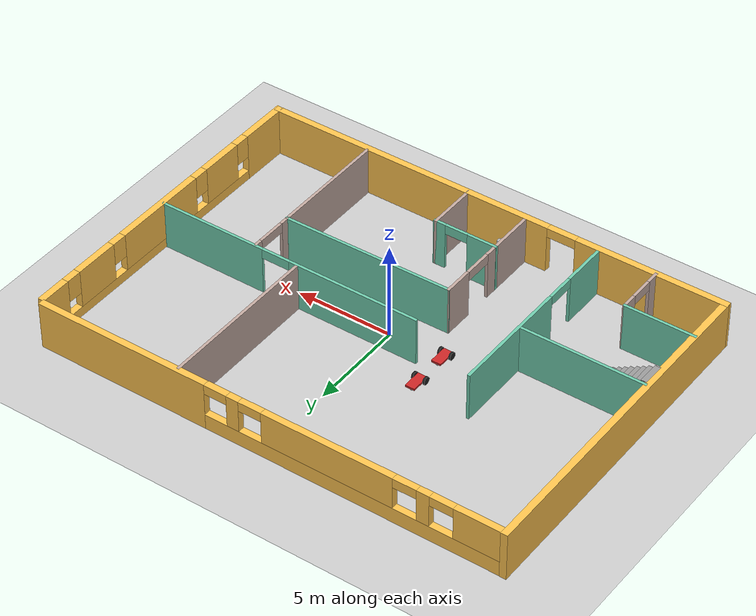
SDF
<sdf version="1.4">
 <world name="default">
  <include><uri>model://sun</uri></include>
  <include><uri>model://ground_plane</uri></include>
  <physics type="ode">
   <real_time_update_rate>1000.0</real_time_update_rate>
   <max_step_size>0.001</max_step_size>
   <real_time_factor>1</real_time_factor>
   <ode>
    <solver>
     <type>quick</type>
     <iters>150</iters>
     <precon_iters>0</precon_iters>
     <sor>1.400000</sor>
     <use_dynamic_moi_rescaling>1</use_dynamic_moi_rescaling>
    </solver>
    <constraints>
     <cfm>0.00001</cfm>
     <erp>0.2</erp>
     <contact_max_correcting_vel>2000.000000</contact_max_correcting_vel>
     <contact_surface_layer>0.01000</contact_surface_layer>
    </constraints>
   </ode>
  </physics>
  <scene><ambient>0.4 0.4 0.4 1</ambient><background>0.7 0.7 0.7 1</background><shadows>false</shadows></scene>
  <include><uri>model://Building</uri></include>
  <include>
   <name>toilet_1</name>
   <pose>-1.240160 -7.007346 0 1.570602 0 1.571</pose>
   <uri>model://Toilet</uri>
  </include>
  <include><name>myrobot_1</name><pose>-2.917230 0 0.2 0 0 0</pose><uri>model://myrobot</uri></include>
  <include><name>myrobot_2</name><pose>-2.917230 2 0.2 0 0 0</pose><uri>model://myrobot</uri></include>
  <plugin name="welcome_message" filename="libwelcome_message.so"/>
 </world>
</sdf>

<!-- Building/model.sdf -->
<sdf version='1.6'>
  <model name='Building'>
    <pose frame=''>-0.168381 0.74213 0 0 -0 0</pose>
    <link name='Stairs_0'>
      <visual name='Stairs_0_Visual_0'>
        <pose frame=''>-7.89562 -2.83855 0.083333 0 -0 -1.5708</pose>
        <geometry>
          <box>
            <size>1.1578 0.296455 0.166667</size>
          </box>
        </geometry>
        <material>
          <script>
            <uri>file://media/materials/scripts/gazebo.material</uri>
            <name>Gazebo/Grey</name>
          </script>
          <ambient>1 1 1 1</ambient>
        </material>
        <meta>
          <layer>0</layer>
        </meta>
      </visual>
      <collision name='Stairs_0_Collision_0'>
        <geometry>
          <box>
            <size>1.1578 0.296455 0.166667</size>
          </box>
        </geometry>
        <pose frame=''>-7.89562 -2.83855 0.083333 0 -0 -1.5708</pose>
      </collision>
      <visual name='Stairs_0_Visual_1'>
        <pose frame=''>-8.19208 -2.83855 0.25 0 -0 -1.5708</pose>
        <geometry>
          <box>
            <size>1.1578 0.296455 0.166667</size>
          </box>
        </geometry>
        <material>
          <script>
            <uri>file://media/materials/scripts/gazebo.material</uri>
            <name>Gazebo/Grey</name>
          </script>
          <ambient>1 1 1 1</ambient>
        </material>
        <meta>
          <layer>0</layer>
        </meta>
      </visual>
      <collision name='Stairs_0_Collision_1'>
        <geometry>
          <box>
            <size>1.1578 0.296455 0.166667</size>
          </box>
        </geometry>
        <pose frame=''>-8.19208 -2.83855 0.25 0 -0 -1.5708</pose>
      </collision>
      <visual name='Stairs_0_Visual_2'>
        <pose frame=''>-8.48853 -2.83855 0.416667 0 -0 -1.5708</pose>
        <geometry>
          <box>
            <size>1.1578 0.296455 0.166667</size>
          </box>
        </geometry>
        <material>
          <script>
            <uri>file://media/materials/scripts/gazebo.material</uri>
            <name>Gazebo/Grey</name>
          </script>
          <ambient>1 1 1 1</ambient>
        </material>
        <meta>
          <layer>0</layer>
        </meta>
      </visual>
      <collision name='Stairs_0_Collision_2'>
        <geometry>
          <box>
            <size>1.1578 0.296455 0.166667</size>
          </box>
        </geometry>
        <pose frame=''>-8.48853 -2.83855 0.416667 0 -0 -1.5708</pose>
      </collision>
      <visual name='Stairs_0_Visual_3'>
        <pose frame=''>-8.78499 -2.83855 0.583333 0 -0 -1.5708</pose>
        <geometry>
          <box>
            <size>1.1578 0.296455 0.166667</size>
          </box>
        </geometry>
        <material>
          <script>
            <uri>file://media/materials/scripts/gazebo.material</uri>
            <name>Gazebo/Grey</name>
          </script>
          <ambient>1 1 1 1</ambient>
        </material>
        <meta>
          <layer>0</layer>
        </meta>
      </visual>
      <collision name='Stairs_0_Collision_3'>
        <geometry>
          <box>
            <size>1.1578 0.296455 0.166667</size>
          </box>
        </geometry>
        <pose frame=''>-8.78499 -2.83855 0.583333 0 -0 -1.5708</pose>
      </collision>
      <visual name='Stairs_0_Visual_4'>
        <pose frame=''>-9.08144 -2.83855 0.75 0 -0 -1.5708</pose>
        <geometry>
          <box>
            <size>1.1578 0.296455 0.166667</size>
          </box>
        </geometry>
        <material>
          <script>
            <uri>file://media/materials/scripts/gazebo.material</uri>
            <name>Gazebo/Grey</name>
          </script>
          <ambient>1 1 1 1</ambient>
        </material>
        <meta>
          <layer>0</layer>
        </meta>
      </visual>
      <collision name='Stairs_0_Collision_4'>
        <geometry>
          <box>
            <size>1.1578 0.296455 0.166667</size>
          </box>
        </geometry>
        <pose frame=''>-9.08144 -2.83855 0.75 0 -0 -1.5708</pose>
      </collision>
      <visual name='Stairs_0_Visual_5'>
        <pose frame=''>-9.3779 -2.83855 0.916667 0 -0 -1.5708</pose>
        <geometry>
          <box>
            <size>1.1578 0.296455 0.166667</size>
          </box>
        </geometry>
        <material>
          <script>
            <uri>file://media/materials/scripts/gazebo.material</uri>
            <name>Gazebo/Grey</name>
          </script>
          <ambient>1 1 1 1</ambient>
        </material>
        <meta>
          <layer>0</layer>
        </meta>
      </visual>
      <collision name='Stairs_0_Collision_5'>
        <geometry>
          <box>
            <size>1.1578 0.296455 0.166667</size>
          </box>
        </geometry>
        <pose frame=''>-9.3779 -2.83855 0.916667 0 -0 -1.5708</pose>
      </collision>
      <visual name='Stairs_0_Visual_6'>
        <pose frame=''>-9.67435 -2.83855 1.08333 0 -0 -1.5708</pose>
        <geometry>
          <box>
            <size>1.1578 0.296455 0.166667</size>
          </box>
        </geometry>
        <material>
          <script>
            <uri>file://media/materials/scripts/gazebo.material</uri>
            <name>Gazebo/Grey</name>
          </script>
          <ambient>1 1 1 1</ambient>
        </material>
        <meta>
          <layer>0</layer>
        </meta>
      </visual>
      <collision name='Stairs_0_Collision_6'>
        <geometry>
          <box>
            <size>1.1578 0.296455 0.166667</size>
          </box>
        </geometry>
        <pose frame=''>-9.67435 -2.83855 1.08333 0 -0 -1.5708</pose>
      </collision>
      <visual name='Stairs_0_Visual_7'>
        <pose frame=''>-9.97081 -2.83855 1.25 0 -0 -1.5708</pose>
        <geometry>
          <box>
            <size>1.1578 0.296455 0.166667</size>
          </box>
        </geometry>
        <material>
          <script>
            <uri>file://media/materials/scripts/gazebo.material</uri>
            <name>Gazebo/Grey</name>
          </script>
          <ambient>1 1 1 1</ambient>
        </material>
        <meta>
          <layer>0</layer>
        </meta>
      </visual>
      <collision name='Stairs_0_Collision_7'>
        <geometry>
          <box>
            <size>1.1578 0.296455 0.166667</size>
          </box>
        </geometry>
        <pose frame=''>-9.97081 -2.83855 1.25 0 -0 -1.5708</pose>
      </collision>
      <visual name='Stairs_0_Visual_8'>
        <pose frame=''>-10.2673 -2.83855 1.41667 0 -0 -1.5708</pose>
        <geometry>
          <box>
            <size>1.1578 0.296455 0.166667</size>
          </box>
        </geometry>
        <material>
          <script>
            <uri>file://media/materials/scripts/gazebo.material</uri>
            <name>Gazebo/Grey</name>
          </script>
          <ambient>1 1 1 1</ambient>
        </material>
        <meta>
          <layer>0</layer>
        </meta>
      </visual>
      <collision name='Stairs_0_Collision_8'>
        <geometry>
          <box>
            <size>1.1578 0.296455 0.166667</size>
          </box>
        </geometry>
        <pose frame=''>-10.2673 -2.83855 1.41667 0 -0 -1.5708</pose>
      </collision>
      <visual name='Stairs_0_Visual_9'>
        <pose frame=''>-10.5637 -2.83855 1.58333 0 -0 -1.5708</pose>
        <geometry>
          <box>
            <size>1.1578 0.296455 0.166667</size>
          </box>
        </geometry>
        <material>
          <script>
            <uri>file://media/materials/scripts/gazebo.material</uri>
            <name>Gazebo/Grey</name>
          </script>
          <ambient>1 1 1 1</ambient>
        </material>
        <meta>
          <layer>0</layer>
        </meta>
      </visual>
      <collision name='Stairs_0_Collision_9'>
        <geometry>
          <box>
            <size>1.1578 0.296455 0.166667</size>
          </box>
        </geometry>
        <pose frame=''>-10.5637 -2.83855 1.58333 0 -0 -1.5708</pose>
      </collision>
      <visual name='Stairs_0_Visual_10'>
        <pose frame=''>-10.8602 -2.83855 1.75 0 -0 -1.5708</pose>
        <geometry>
          <box>
            <size>1.1578 0.296455 0.166667</size>
          </box>
        </geometry>
        <material>
          <script>
            <uri>file://media/materials/scripts/gazebo.material</uri>
            <name>Gazebo/Grey</name>
          </script>
          <ambient>1 1 1 1</ambient>
        </material>
        <meta>
          <layer>0</layer>
        </meta>
      </visual>
      <collision name='Stairs_0_Collision_10'>
        <geometry>
          <box>
            <size>1.1578 0.296455 0.166667</size>
          </box>
        </geometry>
        <pose frame=''>-10.8602 -2.83855 1.75 0 -0 -1.5708</pose>
      </collision>
      <visual name='Stairs_0_Visual_11'>
        <pose frame=''>-11.1566 -2.83855 1.91667 0 -0 -1.5708</pose>
        <geometry>
          <box>
            <size>1.1578 0.296455 0.166667</size>
          </box>
        </geometry>
        <material>
          <script>
            <uri>file://media/materials/scripts/gazebo.material</uri>
            <name>Gazebo/Grey</name>
          </script>
          <ambient>1 1 1 1</ambient>
        </material>
        <meta>
          <layer>0</layer>
        </meta>
      </visual>
      <collision name='Stairs_0_Collision_11'>
        <geometry>
          <box>
            <size>1.1578 0.296455 0.166667</size>
          </box>
        </geometry>
        <pose frame=''>-11.1566 -2.83855 1.91667 0 -0 -1.5708</pose>
      </collision>
      <visual name='Stairs_0_Visual_12'>
        <pose frame=''>-11.4531 -2.83855 2.08333 0 -0 -1.5708</pose>
        <geometry>
          <box>
            <size>1.1578 0.296455 0.166667</size>
          </box>
        </geometry>
        <material>
          <script>
            <uri>file://media/materials/scripts/gazebo.material</uri>
            <name>Gazebo/Grey</name>
          </script>
          <ambient>1 1 1 1</ambient>
        </material>
        <meta>
          <layer>0</layer>
        </meta>
      </visual>
      <collision name='Stairs_0_Collision_12'>
        <geometry>
          <box>
            <size>1.1578 0.296455 0.166667</size>
          </box>
        </geometry>
        <pose frame=''>-11.4531 -2.83855 2.08333 0 -0 -1.5708</pose>
      </collision>
      <visual name='Stairs_0_Visual_13'>
        <pose frame=''>-11.7495 -2.83855 2.25 0 -0 -1.5708</pose>
        <geometry>
          <box>
            <size>1.1578 0.296455 0.166667</size>
          </box>
        </geometry>
        <material>
          <script>
            <uri>file://media/materials/scripts/gazebo.material</uri>
            <name>Gazebo/Grey</name>
          </script>
          <ambient>1 1 1 1</ambient>
        </material>
        <meta>
          <layer>0</layer>
        </meta>
      </visual>
      <collision name='Stairs_0_Collision_13'>
        <geometry>
          <box>
            <size>1.1578 0.296455 0.166667</size>
          </box>
        </geometry>
        <pose frame=''>-11.7495 -2.83855 2.25 0 -0 -1.5708</pose>
      </collision>
      <visual name='Stairs_0_Visual_14'>
        <pose frame=''>-12.046 -2.83855 2.41667 0 -0 -1.5708</pose>
        <geometry>
          <box>
            <size>1.1578 0.296455 0.166667</size>
          </box>
        </geometry>
        <material>
          <script>
            <uri>file://media/materials/scripts/gazebo.material</uri>
            <name>Gazebo/Grey</name>
          </script>
          <ambient>1 1 1 1</ambient>
        </material>
        <meta>
          <layer>0</layer>
        </meta>
      </visual>
      <collision name='Stairs_0_Collision_14'>
        <geometry>
          <box>
            <size>1.1578 0.296455 0.166667</size>
          </box>
        </geometry>
        <pose frame=''>-12.046 -2.83855 2.41667 0 -0 -1.5708</pose>
      </collision>
    </link>
    <link name='Wall_0'>
      <pose frame=''>-0.115061 8.675 0 0 -0 3.14159</pose>
      <visual name='Wall_0_Visual_0'>
        <pose frame=''>-7.77268 0 1.25 0 -0 0</pose>
        <geometry>
          <box>
            <size>9.20463 0.35 2.5</size>
          </box>
        </geometry>
        <material>
          <script>
            <uri>file://media/materials/scripts/gazebo.material</uri>
            <name>Gazebo/Grey</name>
          </script>
          <ambient>1 0.764706 0.305882 1</ambient>
        </material>
        <meta>
          <layer>0</layer>
        </meta>
      </visual>
      <collision name='Wall_0_Collision_0'>
        <geometry>
          <box>
            <size>9.20463 0.35 2.5</size>
          </box>
        </geometry>
        <pose frame=''>-7.77268 0 1.25 0 -0 0</pose>
      </collision>
      <visual name='Wall_0_Visual_1'>
        <pose frame=''>4.60232 0 0.4 0 -0 0</pose>
        <geometry>
          <box>
            <size>15.5454 0.35 0.8</size>
          </box>
        </geometry>
        <material>
          <script>
            <uri>file://media/materials/scripts/gazebo.material</uri>
            <name>Gazebo/Grey</name>
          </script>
          <ambient>1 0.764706 0.305882 1</ambient>
        </material>
        <meta>
          <layer>0</layer>
        </meta>
      </visual>
      <collision name='Wall_0_Collision_1'>
        <geometry>
          <box>
            <size>15.5454 0.35 0.8</size>
          </box>
        </geometry>
        <pose frame=''>4.60232 0 0.4 0 -0 0</pose>
      </collision>
      <visual name='Wall_0_Visual_2'>
        <pose frame=''>-1.64984 0 1.65 0 -0 0</pose>
        <geometry>
          <box>
            <size>0.641045 0.35 1.7</size>
          </box>
        </geometry>
        <material>
          <script>
            <uri>file://media/materials/scripts/gazebo.material</uri>
            <name>Gazebo/Grey</name>
          </script>
          <ambient>1 0.764706 0.305882 1</ambient>
        </material>
        <meta>
          <layer>0</layer>
        </meta>
      </visual>
      <collision name='Wall_0_Collision_2'>
        <geometry>
          <box>
            <size>0.641045 0.35 1.7</size>
          </box>
        </geometry>
        <pose frame=''>-1.64984 0 1.65 0 -0 0</pose>
      </collision>
      <visual name='Wall_0_Visual_3'>
        <pose frame=''>3.28154 0 1.65 0 -0 0</pose>
        <geometry>
          <box>
            <size>6.82172 0.35 1.7</size>
          </box>
        </geometry>
        <material>
          <script>
            <uri>file://media/materials/scripts/gazebo.material</uri>
            <name>Gazebo/Grey</name>
          </script>
          <ambient>1 0.764706 0.305882 1</ambient>
        </material>
        <meta>
          <layer>0</layer>
        </meta>
      </visual>
      <collision name='Wall_0_Collision_3'>
        <geometry>
          <box>
            <size>6.82172 0.35 1.7</size>
          </box>
        </geometry>
        <pose frame=''>3.28154 0 1.65 0 -0 0</pose>
      </collision>
      <visual name='Wall_0_Visual_4'>
        <pose frame=''>8.20913 0 1.65 0 -0 0</pose>
        <geometry>
          <box>
            <size>0.633451 0.35 1.7</size>
          </box>
        </geometry>
        <material>
          <script>
            <uri>file://media/materials/scripts/gazebo.material</uri>
            <name>Gazebo/Grey</name>
          </script>
          <ambient>1 0.764706 0.305882 1</ambient>
        </material>
        <meta>
          <layer>0</layer>
        </meta>
      </visual>
      <collision name='Wall_0_Collision_4'>
        <geometry>
          <box>
            <size>0.633451 0.35 1.7</size>
          </box>
        </geometry>
        <pose frame=''>8.20913 0 1.65 0 -0 0</pose>
      </collision>
      <visual name='Wall_0_Visual_5'>
        <pose frame=''>11.0504 0 1.65 0 -0 0</pose>
        <geometry>
          <box>
            <size>2.64915 0.35 1.7</size>
          </box>
        </geometry>
        <material>
          <script>
            <uri>file://media/materials/scripts/gazebo.material</uri>
            <name>Gazebo/Grey</name>
          </script>
          <ambient>1 0.764706 0.305882 1</ambient>
        </material>
        <meta>
          <layer>0</layer>
        </meta>
      </visual>
      <collision name='Wall_0_Collision_5'>
        <geometry>
          <box>
            <size>2.64915 0.35 1.7</size>
          </box>
        </geometry>
        <pose frame=''>11.0504 0 1.65 0 -0 0</pose>
      </collision>
      <visual name='Wall_0_Visual_6'>
        <pose frame=''>-2.57037 0 2.25 0 -0 0</pose>
        <geometry>
          <box>
            <size>1.2 0.35 0.5</size>
          </box>
        </geometry>
        <material>
          <script>
            <uri>file://media/materials/scripts/gazebo.material</uri>
            <name>Gazebo/Grey</name>
          </script>
          <ambient>1 0.764706 0.305882 1</ambient>
        </material>
        <meta>
          <layer>0</layer>
        </meta>
      </visual>
      <collision name='Wall_0_Collision_6'>
        <geometry>
          <box>
            <size>1.2 0.35 0.5</size>
          </box>
        </geometry>
        <pose frame=''>-2.57037 0 2.25 0 -0 0</pose>
      </collision>
      <visual name='Wall_0_Visual_7'>
        <pose frame=''>-0.729321 0 2.25 0 -0 0</pose>
        <geometry>
          <box>
            <size>1.2 0.35 0.5</size>
          </box>
        </geometry>
        <material>
          <script>
            <uri>file://media/materials/scripts/gazebo.material</uri>
            <name>Gazebo/Grey</name>
          </script>
          <ambient>1 0.764706 0.305882 1</ambient>
        </material>
        <meta>
          <layer>0</layer>
        </meta>
      </visual>
      <collision name='Wall_0_Collision_7'>
        <geometry>
          <box>
            <size>1.2 0.35 0.5</size>
          </box>
        </geometry>
        <pose frame=''>-0.729321 0 2.25 0 -0 0</pose>
      </collision>
      <visual name='Wall_0_Visual_8'>
        <pose frame=''>7.2924 0 2.25 0 -0 0</pose>
        <geometry>
          <box>
            <size>1.2 0.35 0.5</size>
          </box>
        </geometry>
        <material>
          <script>
            <uri>file://media/materials/scripts/gazebo.material</uri>
            <name>Gazebo/Grey</name>
          </script>
          <ambient>1 0.764706 0.305882 1</ambient>
        </material>
        <meta>
          <layer>0</layer>
        </meta>
      </visual>
      <collision name='Wall_0_Collision_8'>
        <geometry>
          <box>
            <size>1.2 0.35 0.5</size>
          </box>
        </geometry>
        <pose frame=''>7.2924 0 2.25 0 -0 0</pose>
      </collision>
      <visual name='Wall_0_Visual_9'>
        <pose frame=''>9.12585 0 2.25 0 -0 0</pose>
        <geometry>
          <box>
            <size>1.2 0.35 0.5</size>
          </box>
        </geometry>
        <material>
          <script>
            <uri>file://media/materials/scripts/gazebo.material</uri>
            <name>Gazebo/Grey</name>
          </script>
          <ambient>1 0.764706 0.305882 1</ambient>
        </material>
        <meta>
          <layer>0</layer>
        </meta>
      </visual>
      <collision name='Wall_0_Collision_9'>
        <geometry>
          <box>
            <size>1.2 0.35 0.5</size>
          </box>
        </geometry>
        <pose frame=''>9.12585 0 2.25 0 -0 0</pose>
      </collision>
    </link>
    <link name='Wall_1'>
      <collision name='Wall_1_Collision'>
        <geometry>
          <box>
            <size>17.7463 0.35 2.5</size>
          </box>
        </geometry>
        <pose frame=''>0 0 1.25 0 -0 0</pose>
      </collision>
      <visual name='Wall_1_Visual'>
        <pose frame=''>0 0 1.25 0 -0 0</pose>
        <geometry>
          <box>
            <size>17.7463 0.35 2.5</size>
          </box>
        </geometry>
        <material>
          <script>
            <uri>file://media/materials/scripts/gazebo.material</uri>
            <name>Gazebo/Grey</name>
          </script>
          <ambient>1 0.764706 0.305882 1</ambient>
        </material>
        <meta>
          <layer>0</layer>
        </meta>
      </visual>
      <pose frame=''>-12.3149 0 0 0 -0 -1.56812</pose>
    </link>
    <link name='Wall_10'>
      <collision name='Wall_10_Collision'>
        <geometry>
          <box>
            <size>8.99016 0.15 2.5</size>
          </box>
        </geometry>
        <pose frame=''>0 0 1.25 0 -0 0</pose>
      </collision>
      <visual name='Wall_10_Visual'>
        <pose frame=''>0 0 1.25 0 -0 0</pose>
        <geometry>
          <box>
            <size>8.99016 0.15 2.5</size>
          </box>
        </geometry>
        <material>
          <script>
            <uri>file://media/materials/scripts/gazebo.material</uri>
            <name>Gazebo/Grey</name>
          </script>
          <ambient>0.435294 0.796078 0.67451 1</ambient>
        </material>
        <meta>
          <layer>0</layer>
        </meta>
      </visual>
      <pose frame=''>2.57383 -2.37111 0 0 -0 0.012303</pose>
    </link>
    <link name='Wall_11'>
      <collision name='Wall_11_Collision'>
        <geometry>
          <box>
            <size>6.35877 0.15 2.5</size>
          </box>
        </geometry>
        <pose frame=''>0 0 1.25 0 -0 0</pose>
      </collision>
      <visual name='Wall_11_Visual'>
        <pose frame=''>0 0 1.25 0 -0 0</pose>
        <geometry>
          <box>
            <size>6.35877 0.15 2.5</size>
          </box>
        </geometry>
        <material>
          <script>
            <uri>file://media/materials/scripts/gazebo.material</uri>
            <name>Gazebo/Grey</name>
          </script>
          <ambient>0.760784 0.662745 0.627451 1</ambient>
        </material>
        <meta>
          <layer>0</layer>
        </meta>
      </visual>
      <pose frame=''>6.99883 -5.4211 0 0 -0 -1.5692</pose>
    </link>
    <link name='Wall_14'>
      <pose frame=''>5.19897 0.095021 0 0 -0 3.14159</pose>
      <visual name='Wall_14_Visual_0'>
        <pose frame=''>-4.22612 0 1.25 0 -0 0</pose>
        <geometry>
          <box>
            <size>5.74777 0.15 2.5</size>
          </box>
        </geometry>
        <material>
          <script>
            <uri>file://media/materials/scripts/gazebo.material</uri>
            <name>Gazebo/Grey</name>
          </script>
          <ambient>0.435294 0.796078 0.67451 1</ambient>
        </material>
        <meta>
          <layer>0</layer>
        </meta>
      </visual>
      <collision name='Wall_14_Collision_0'>
        <geometry>
          <box>
            <size>5.74777 0.15 2.5</size>
          </box>
        </geometry>
        <pose frame=''>-4.22612 0 1.25 0 -0 0</pose>
      </collision>
      <visual name='Wall_14_Visual_1'>
        <pose frame=''>3.62388 0 1.25 0 -0 0</pose>
        <geometry>
          <box>
            <size>6.95223 0.15 2.5</size>
          </box>
        </geometry>
        <material>
          <script>
            <uri>file://media/materials/scripts/gazebo.material</uri>
            <name>Gazebo/Grey</name>
          </script>
          <ambient>0.435294 0.796078 0.67451 1</ambient>
        </material>
        <meta>
          <layer>0</layer>
        </meta>
      </visual>
      <collision name='Wall_14_Collision_1'>
        <geometry>
          <box>
            <size>6.95223 0.15 2.5</size>
          </box>
        </geometry>
        <pose frame=''>3.62388 0 1.25 0 -0 0</pose>
      </collision>
      <visual name='Wall_14_Visual_2'>
        <pose frame=''>-0.602234 0 2.25 0 -0 0</pose>
        <geometry>
          <box>
            <size>1.5 0.15 0.5</size>
          </box>
        </geometry>
        <material>
          <script>
            <uri>file://media/materials/scripts/gazebo.material</uri>
            <name>Gazebo/Grey</name>
          </script>
          <ambient>0.435294 0.796078 0.67451 1</ambient>
        </material>
        <meta>
          <layer>0</layer>
        </meta>
      </visual>
      <collision name='Wall_14_Collision_2'>
        <geometry>
          <box>
            <size>1.5 0.15 0.5</size>
          </box>
        </geometry>
        <pose frame=''>-0.602234 0 2.25 0 -0 0</pose>
      </collision>
    </link>
    <link name='Wall_16'>
      <pose frame=''>6.99388 -1.15161 0 0 -0 1.5708</pose>
      <visual name='Wall_16_Visual_0'>
        <pose frame=''>-0.964185 0 1.25 0 -0 0</pose>
        <geometry>
          <box>
            <size>0.571629 0.15 2.5</size>
          </box>
        </geometry>
        <material>
          <script>
            <uri>file://media/materials/scripts/gazebo.material</uri>
            <name>Gazebo/Grey</name>
          </script>
          <ambient>0.760784 0.662745 0.627451 1</ambient>
        </material>
        <meta>
          <layer>0</layer>
        </meta>
      </visual>
      <collision name='Wall_16_Collision_0'>
        <geometry>
          <box>
            <size>0.571629 0.15 2.5</size>
          </box>
        </geometry>
        <pose frame=''>-0.964185 0 1.25 0 -0 0</pose>
      </collision>
      <visual name='Wall_16_Visual_1'>
        <pose frame=''>1.03581 0 1.25 0 -0 0</pose>
        <geometry>
          <box>
            <size>0.428371 0.15 2.5</size>
          </box>
        </geometry>
        <material>
          <script>
            <uri>file://media/materials/scripts/gazebo.material</uri>
            <name>Gazebo/Grey</name>
          </script>
          <ambient>0.760784 0.662745 0.627451 1</ambient>
        </material>
        <meta>
          <layer>0</layer>
        </meta>
      </visual>
      <collision name='Wall_16_Collision_1'>
        <geometry>
          <box>
            <size>0.428371 0.15 2.5</size>
          </box>
        </geometry>
        <pose frame=''>1.03581 0 1.25 0 -0 0</pose>
      </collision>
      <visual name='Wall_16_Visual_2'>
        <pose frame=''>0.071629 0 2.25 0 -0 0</pose>
        <geometry>
          <box>
            <size>1.5 0.15 0.5</size>
          </box>
        </geometry>
        <material>
          <script>
            <uri>file://media/materials/scripts/gazebo.material</uri>
            <name>Gazebo/Grey</name>
          </script>
          <ambient>0.760784 0.662745 0.627451 1</ambient>
        </material>
        <meta>
          <layer>0</layer>
        </meta>
      </visual>
      <collision name='Wall_16_Collision_2'>
        <geometry>
          <box>
            <size>1.5 0.15 0.5</size>
          </box>
        </geometry>
        <pose frame=''>0.071629 0 2.25 0 -0 0</pose>
      </collision>
    </link>
    <link name='Wall_18'>
      <collision name='Wall_18_Collision'>
        <geometry>
          <box>
            <size>8.5 0.15 2.5</size>
          </box>
        </geometry>
        <pose frame=''>0 0 1.25 0 -0 0</pose>
      </collision>
      <visual name='Wall_18_Visual'>
        <pose frame=''>0 0 1.25 0 -0 0</pose>
        <geometry>
          <box>
            <size>8.5 0.15 2.5</size>
          </box>
        </geometry>
        <material>
          <script>
            <uri>file://media/materials/scripts/gazebo.material</uri>
            <name>Gazebo/Grey</name>
          </script>
          <ambient>0.760784 0.662745 0.627451 1</ambient>
        </material>
        <meta>
          <layer>0</layer>
        </meta>
      </visual>
      <pose frame=''>4.60523 4.40654 0 0 -0 -1.5708</pose>
    </link>
    <link name='Wall_2'>
      <pose frame=''>-0.00707 -8.69813 0 0 -0 0</pose>
      <visual name='Wall_2_Visual_0'>
        <pose frame=''>-8.49265 0 1.25 0 -0 0</pose>
        <geometry>
          <box>
            <size>7.9338 0.35 2.5</size>
          </box>
        </geometry>
        <material>
          <script>
            <uri>file://media/materials/scripts/gazebo.material</uri>
            <name>Gazebo/Grey</name>
          </script>
          <ambient>1 0.764706 0.305882 1</ambient>
        </material>
        <meta>
          <layer>0</layer>
        </meta>
      </visual>
      <collision name='Wall_2_Collision_0'>
        <geometry>
          <box>
            <size>7.9338 0.35 2.5</size>
          </box>
        </geometry>
        <pose frame=''>-8.49265 0 1.25 0 -0 0</pose>
      </collision>
      <visual name='Wall_2_Visual_1'>
        <pose frame=''>4.7169 0 1.25 0 -0 0</pose>
        <geometry>
          <box>
            <size>15.4853 0.35 2.5</size>
          </box>
        </geometry>
        <material>
          <script>
            <uri>file://media/materials/scripts/gazebo.material</uri>
            <name>Gazebo/Grey</name>
          </script>
          <ambient>1 0.764706 0.305882 1</ambient>
        </material>
        <meta>
          <layer>0</layer>
        </meta>
      </visual>
      <collision name='Wall_2_Collision_1'>
        <geometry>
          <box>
            <size>15.4853 0.35 2.5</size>
          </box>
        </geometry>
        <pose frame=''>4.7169 0 1.25 0 -0 0</pose>
      </collision>
      <visual name='Wall_2_Visual_2'>
        <pose frame=''>-3.77575 0 2.25 0 -0 0</pose>
        <geometry>
          <box>
            <size>1.5 0.35 0.5</size>
          </box>
        </geometry>
        <material>
          <script>
            <uri>file://media/materials/scripts/gazebo.material</uri>
            <name>Gazebo/Grey</name>
          </script>
          <ambient>1 0.764706 0.305882 1</ambient>
        </material>
        <meta>
          <layer>0</layer>
        </meta>
      </visual>
      <collision name='Wall_2_Collision_2'>
        <geometry>
          <box>
            <size>1.5 0.35 0.5</size>
          </box>
        </geometry>
        <pose frame=''>-3.77575 0 2.25 0 -0 0</pose>
      </collision>
    </link>
    <link name='Wall_20'>
      <collision name='Wall_20_Collision'>
        <geometry>
          <box>
            <size>3.75 0.15 2.5</size>
          </box>
        </geometry>
        <pose frame=''>0 0 1.25 0 -0 0</pose>
      </collision>
      <visual name='Wall_20_Visual'>
        <pose frame=''>0 0 1.25 0 -0 0</pose>
        <geometry>
          <box>
            <size>3.75 0.15 2.5</size>
          </box>
        </geometry>
        <material>
          <script>
            <uri>file://media/materials/scripts/gazebo.material</uri>
            <name>Gazebo/Grey</name>
          </script>
          <ambient>0.435294 0.796078 0.67451 1</ambient>
        </material>
        <meta>
          <layer>0</layer>
        </meta>
      </visual>
      <pose frame=''>-10.5332 -6.03352 0 0 -0 0</pose>
    </link>
    <link name='Wall_21'>
      <pose frame=''>-8.7332 -7.33352 0 0 -0 -1.5708</pose>
      <visual name='Wall_21_Visual_0'>
        <pose frame=''>-0.95457 0 1.25 0 -0 0</pose>
        <geometry>
          <box>
            <size>0.840859 0.15 2.5</size>
          </box>
        </geometry>
        <material>
          <script>
            <uri>file://media/materials/scripts/gazebo.material</uri>
            <name>Gazebo/Grey</name>
          </script>
          <ambient>0.760784 0.662745 0.627451 1</ambient>
        </material>
        <meta>
          <layer>0</layer>
        </meta>
      </visual>
      <collision name='Wall_21_Collision_0'>
        <geometry>
          <box>
            <size>0.840859 0.15 2.5</size>
          </box>
        </geometry>
        <pose frame=''>-0.95457 0 1.25 0 -0 0</pose>
      </collision>
      <visual name='Wall_21_Visual_1'>
        <pose frame=''>1.02043 0 1.25 0 -0 0</pose>
        <geometry>
          <box>
            <size>0.709141 0.15 2.5</size>
          </box>
        </geometry>
        <material>
          <script>
            <uri>file://media/materials/scripts/gazebo.material</uri>
            <name>Gazebo/Grey</name>
          </script>
          <ambient>0.760784 0.662745 0.627451 1</ambient>
        </material>
        <meta>
          <layer>0</layer>
        </meta>
      </visual>
      <collision name='Wall_21_Collision_1'>
        <geometry>
          <box>
            <size>0.709141 0.15 2.5</size>
          </box>
        </geometry>
        <pose frame=''>1.02043 0 1.25 0 -0 0</pose>
      </collision>
      <visual name='Wall_21_Visual_2'>
        <pose frame=''>0.065859 0 2.25 0 -0 0</pose>
        <geometry>
          <box>
            <size>1.2 0.15 0.5</size>
          </box>
        </geometry>
        <material>
          <script>
            <uri>file://media/materials/scripts/gazebo.material</uri>
            <name>Gazebo/Grey</name>
          </script>
          <ambient>0.760784 0.662745 0.627451 1</ambient>
        </material>
        <meta>
          <layer>0</layer>
        </meta>
      </visual>
      <collision name='Wall_21_Collision_2'>
        <geometry>
          <box>
            <size>1.2 0.15 0.5</size>
          </box>
        </geometry>
        <pose frame=''>0.065859 0 2.25 0 -0 0</pose>
      </collision>
    </link>
    <link name='Wall_23'>
      <pose frame=''>-0.217782 -6.1063 0 0 -0 0</pose>
      <visual name='Wall_23_Visual_0'>
        <pose frame=''>-0.926955 0 1.25 0 -0 0</pose>
        <geometry>
          <box>
            <size>1.57905 0.15 2.5</size>
          </box>
        </geometry>
        <material>
          <script>
            <uri>file://media/materials/scripts/gazebo.material</uri>
            <name>Gazebo/Grey</name>
          </script>
          <ambient>0.435294 0.796078 0.67451 1</ambient>
        </material>
        <meta>
          <layer>0</layer>
        </meta>
      </visual>
      <collision name='Wall_23_Collision_0'>
        <geometry>
          <box>
            <size>1.57905 0.15 2.5</size>
          </box>
        </geometry>
        <pose frame=''>-0.926955 0 1.25 0 -0 0</pose>
      </collision>
      <visual name='Wall_23_Visual_1'>
        <pose frame=''>1.38953 0 1.25 0 -0 0</pose>
        <geometry>
          <box>
            <size>0.653909 0.15 2.5</size>
          </box>
        </geometry>
        <material>
          <script>
            <uri>file://media/materials/scripts/gazebo.material</uri>
            <name>Gazebo/Grey</name>
          </script>
          <ambient>0.435294 0.796078 0.67451 1</ambient>
        </material>
        <meta>
          <layer>0</layer>
        </meta>
      </visual>
      <collision name='Wall_23_Collision_1'>
        <geometry>
          <box>
            <size>0.653909 0.15 2.5</size>
          </box>
        </geometry>
        <pose frame=''>1.38953 0 1.25 0 -0 0</pose>
      </collision>
      <visual name='Wall_23_Visual_2'>
        <pose frame=''>0.462571 0 2.25 0 -0 0</pose>
        <geometry>
          <box>
            <size>1.2 0.15 0.5</size>
          </box>
        </geometry>
        <material>
          <script>
            <uri>file://media/materials/scripts/gazebo.material</uri>
            <name>Gazebo/Grey</name>
          </script>
          <ambient>0.435294 0.796078 0.67451 1</ambient>
        </material>
        <meta>
          <layer>0</layer>
        </meta>
      </visual>
      <collision name='Wall_23_Collision_2'>
        <geometry>
          <box>
            <size>1.2 0.15 0.5</size>
          </box>
        </geometry>
        <pose frame=''>0.462571 0 2.25 0 -0 0</pose>
      </collision>
    </link>
    <link name='Wall_24'>
      <collision name='Wall_24_Collision'>
        <geometry>
          <box>
            <size>2.75 0.15 2.5</size>
          </box>
        </geometry>
        <pose frame=''>0 0 1.25 0 -0 0</pose>
      </collision>
      <visual name='Wall_24_Visual'>
        <pose frame=''>0 0 1.25 0 -0 0</pose>
        <geometry>
          <box>
            <size>2.75 0.15 2.5</size>
          </box>
        </geometry>
        <material>
          <script>
            <uri>file://media/materials/scripts/gazebo.material</uri>
            <name>Gazebo/Grey</name>
          </script>
          <ambient>0.760784 0.662745 0.627451 1</ambient>
        </material>
        <meta>
          <layer>0</layer>
        </meta>
      </visual>
      <pose frame=''>1.37796 -7.4063 0 0 -0 -1.5708</pose>
    </link>
    <link name='Wall_3'>
      <pose frame=''>12.3387 -0.14813 0 0 -0 1.5708</pose>
      <visual name='Wall_3_Visual_0'>
        <pose frame=''>-7.33033 0 1.25 0 -0 0</pose>
        <geometry>
          <box>
            <size>2.78938 0.35 2.5</size>
          </box>
        </geometry>
        <material>
          <script>
            <uri>file://media/materials/scripts/gazebo.material</uri>
            <name>Gazebo/Grey</name>
          </script>
          <ambient>1 0.764706 0.305882 1</ambient>
        </material>
        <meta>
          <layer>0</layer>
        </meta>
      </visual>
      <collision name='Wall_3_Collision_0'>
        <geometry>
          <box>
            <size>2.78938 0.35 2.5</size>
          </box>
        </geometry>
        <pose frame=''>-7.33033 0 1.25 0 -0 0</pose>
      </collision>
      <visual name='Wall_3_Visual_1'>
        <pose frame=''>1.39469 0 0.25 0 -0 0</pose>
        <geometry>
          <box>
            <size>14.6607 0.35 0.5</size>
          </box>
        </geometry>
        <material>
          <script>
            <uri>file://media/materials/scripts/gazebo.material</uri>
            <name>Gazebo/Grey</name>
          </script>
          <ambient>1 0.764706 0.305882 1</ambient>
        </material>
        <meta>
          <layer>0</layer>
        </meta>
      </visual>
      <collision name='Wall_3_Collision_1'>
        <geometry>
          <box>
            <size>14.6607 0.35 0.5</size>
          </box>
        </geometry>
        <pose frame=''>1.39469 0 0.25 0 -0 0</pose>
      </collision>
      <visual name='Wall_3_Visual_2'>
        <pose frame=''>-3.98435 0 1.5 0 -0 0</pose>
        <geometry>
          <box>
            <size>2.30259 0.35 2</size>
          </box>
        </geometry>
        <material>
          <script>
            <uri>file://media/materials/scripts/gazebo.material</uri>
            <name>Gazebo/Grey</name>
          </script>
          <ambient>1 0.764706 0.305882 1</ambient>
        </material>
        <meta>
          <layer>0</layer>
        </meta>
      </visual>
      <collision name='Wall_3_Collision_2'>
        <geometry>
          <box>
            <size>2.30259 0.35 2</size>
          </box>
        </geometry>
        <pose frame=''>-3.98435 0 1.5 0 -0 0</pose>
      </collision>
      <visual name='Wall_3_Visual_3'>
        <pose frame=''>0.541586 0 1.5 0 -0 0</pose>
        <geometry>
          <box>
            <size>5.14929 0.35 2</size>
          </box>
        </geometry>
        <material>
          <script>
            <uri>file://media/materials/scripts/gazebo.material</uri>
            <name>Gazebo/Grey</name>
          </script>
          <ambient>1 0.764706 0.305882 1</ambient>
        </material>
        <meta>
          <layer>0</layer>
        </meta>
      </visual>
      <collision name='Wall_3_Collision_3'>
        <geometry>
          <box>
            <size>5.14929 0.35 2</size>
          </box>
        </geometry>
        <pose frame=''>0.541586 0 1.5 0 -0 0</pose>
      </collision>
      <visual name='Wall_3_Visual_4'>
        <pose frame=''>5.10323 0 1.5 0 -0 0</pose>
        <geometry>
          <box>
            <size>2.374 0.35 2</size>
          </box>
        </geometry>
        <material>
          <script>
            <uri>file://media/materials/scripts/gazebo.material</uri>
            <name>Gazebo/Grey</name>
          </script>
          <ambient>1 0.764706 0.305882 1</ambient>
        </material>
        <meta>
          <layer>0</layer>
        </meta>
      </visual>
      <collision name='Wall_3_Collision_4'>
        <geometry>
          <box>
            <size>2.374 0.35 2</size>
          </box>
        </geometry>
        <pose frame=''>5.10323 0 1.5 0 -0 0</pose>
      </collision>
      <visual name='Wall_3_Visual_5'>
        <pose frame=''>7.90763 0 1.5 0 -0 0</pose>
        <geometry>
          <box>
            <size>1.63479 0.35 2</size>
          </box>
        </geometry>
        <material>
          <script>
            <uri>file://media/materials/scripts/gazebo.material</uri>
            <name>Gazebo/Grey</name>
          </script>
          <ambient>1 0.764706 0.305882 1</ambient>
        </material>
        <meta>
          <layer>0</layer>
        </meta>
      </visual>
      <collision name='Wall_3_Collision_5'>
        <geometry>
          <box>
            <size>1.63479 0.35 2</size>
          </box>
        </geometry>
        <pose frame=''>7.90763 0 1.5 0 -0 0</pose>
      </collision>
      <visual name='Wall_3_Visual_6'>
        <pose frame=''>-5.53564 0 1.9 0 -0 0</pose>
        <geometry>
          <box>
            <size>0.8 0.35 1.2</size>
          </box>
        </geometry>
        <material>
          <script>
            <uri>file://media/materials/scripts/gazebo.material</uri>
            <name>Gazebo/Grey</name>
          </script>
          <ambient>1 0.764706 0.305882 1</ambient>
        </material>
        <meta>
          <layer>0</layer>
        </meta>
      </visual>
      <collision name='Wall_3_Collision_6'>
        <geometry>
          <box>
            <size>0.8 0.35 1.2</size>
          </box>
        </geometry>
        <pose frame=''>-5.53564 0 1.9 0 -0 0</pose>
      </collision>
      <visual name='Wall_3_Visual_7'>
        <pose frame=''>-2.43306 0 1.9 0 -0 0</pose>
        <geometry>
          <box>
            <size>0.8 0.35 1.2</size>
          </box>
        </geometry>
        <material>
          <script>
            <uri>file://media/materials/scripts/gazebo.material</uri>
            <name>Gazebo/Grey</name>
          </script>
          <ambient>1 0.764706 0.305882 1</ambient>
        </material>
        <meta>
          <layer>0</layer>
        </meta>
      </visual>
      <collision name='Wall_3_Collision_7'>
        <geometry>
          <box>
            <size>0.8 0.35 1.2</size>
          </box>
        </geometry>
        <pose frame=''>-2.43306 0 1.9 0 -0 0</pose>
      </collision>
      <visual name='Wall_3_Visual_8'>
        <pose frame=''>3.51623 0 1.9 0 -0 0</pose>
        <geometry>
          <box>
            <size>0.8 0.35 1.2</size>
          </box>
        </geometry>
        <material>
          <script>
            <uri>file://media/materials/scripts/gazebo.material</uri>
            <name>Gazebo/Grey</name>
          </script>
          <ambient>1 0.764706 0.305882 1</ambient>
        </material>
        <meta>
          <layer>0</layer>
        </meta>
      </visual>
      <collision name='Wall_3_Collision_8'>
        <geometry>
          <box>
            <size>0.8 0.35 1.2</size>
          </box>
        </geometry>
        <pose frame=''>3.51623 0 1.9 0 -0 0</pose>
      </collision>
      <visual name='Wall_3_Visual_9'>
        <pose frame=''>6.69023 0 1.9 0 -0 0</pose>
        <geometry>
          <box>
            <size>0.8 0.35 1.2</size>
          </box>
        </geometry>
        <material>
          <script>
            <uri>file://media/materials/scripts/gazebo.material</uri>
            <name>Gazebo/Grey</name>
          </script>
          <ambient>1 0.764706 0.305882 1</ambient>
        </material>
        <meta>
          <layer>0</layer>
        </meta>
      </visual>
      <collision name='Wall_3_Collision_9'>
        <geometry>
          <box>
            <size>0.8 0.35 1.2</size>
          </box>
        </geometry>
        <pose frame=''>6.69023 0 1.9 0 -0 0</pose>
      </collision>
    </link>
    <link name='Wall_5'>
      <pose frame=''>-5.77087 -3.46479 0 0 -0 -1.5708</pose>
      <visual name='Wall_5_Visual_0'>
        <pose frame=''>-2.03637 0 1.25 0 -0 0</pose>
        <geometry>
          <box>
            <size>6.42725 0.15 2.5</size>
          </box>
        </geometry>
        <material>
          <script>
            <uri>file://media/materials/scripts/gazebo.material</uri>
            <name>Gazebo/Grey</name>
          </script>
          <ambient>0.435294 0.796078 0.67451 1</ambient>
        </material>
        <meta>
          <layer>0</layer>
        </meta>
      </visual>
      <collision name='Wall_5_Collision_0'>
        <geometry>
          <box>
            <size>6.42725 0.15 2.5</size>
          </box>
        </geometry>
        <pose frame=''>-2.03637 0 1.25 0 -0 0</pose>
      </collision>
      <visual name='Wall_5_Visual_1'>
        <pose frame=''>3.96363 0 1.25 0 -0 0</pose>
        <geometry>
          <box>
            <size>2.57275 0.15 2.5</size>
          </box>
        </geometry>
        <material>
          <script>
            <uri>file://media/materials/scripts/gazebo.material</uri>
            <name>Gazebo/Grey</name>
          </script>
          <ambient>0.435294 0.796078 0.67451 1</ambient>
        </material>
        <meta>
          <layer>0</layer>
        </meta>
      </visual>
      <collision name='Wall_5_Collision_1'>
        <geometry>
          <box>
            <size>2.57275 0.15 2.5</size>
          </box>
        </geometry>
        <pose frame=''>3.96363 0 1.25 0 -0 0</pose>
      </collision>
      <visual name='Wall_5_Visual_2'>
        <pose frame=''>1.92725 0 2.25 0 -0 0</pose>
        <geometry>
          <box>
            <size>1.5 0.15 0.5</size>
          </box>
        </geometry>
        <material>
          <script>
            <uri>file://media/materials/scripts/gazebo.material</uri>
            <name>Gazebo/Grey</name>
          </script>
          <ambient>0.435294 0.796078 0.67451 1</ambient>
        </material>
        <meta>
          <layer>0</layer>
        </meta>
      </visual>
      <collision name='Wall_5_Collision_2'>
        <geometry>
          <box>
            <size>1.5 0.15 0.5</size>
          </box>
        </geometry>
        <pose frame=''>1.92725 0 2.25 0 -0 0</pose>
      </collision>
    </link>
    <link name='Wall_7'>
      <collision name='Wall_7_Collision'>
        <geometry>
          <box>
            <size>6.5 0.15 2.5</size>
          </box>
        </geometry>
        <pose frame=''>0 0 1.25 0 -0 0</pose>
      </collision>
      <visual name='Wall_7_Visual'>
        <pose frame=''>0 0 1.25 0 -0 0</pose>
        <geometry>
          <box>
            <size>6.5 0.15 2.5</size>
          </box>
        </geometry>
        <material>
          <script>
            <uri>file://media/materials/scripts/gazebo.material</uri>
            <name>Gazebo/Grey</name>
          </script>
          <ambient>0.435294 0.796078 0.67451 1</ambient>
        </material>
        <meta>
          <layer>0</layer>
        </meta>
      </visual>
      <pose frame=''>-9.04138 -2.14013 0 0 -0 0</pose>
    </link>
    <link name='Wall_9'>
      <pose frame=''>-1.84623 -5.47549 0 0 -0 1.5708</pose>
      <visual name='Wall_9_Visual_0'>
        <pose frame=''>-1.53427 0 1.25 0 -0 0</pose>
        <geometry>
          <box>
            <size>3.18147 0.15 2.5</size>
          </box>
        </geometry>
        <material>
          <script>
            <uri>file://media/materials/scripts/gazebo.material</uri>
            <name>Gazebo/Grey</name>
          </script>
          <ambient>0.760784 0.662745 0.627451 1</ambient>
        </material>
        <meta>
          <layer>0</layer>
        </meta>
      </visual>
      <collision name='Wall_9_Collision_0'>
        <geometry>
          <box>
            <size>3.18147 0.15 2.5</size>
          </box>
        </geometry>
        <pose frame=''>-1.53427 0 1.25 0 -0 0</pose>
      </collision>
      <visual name='Wall_9_Visual_1'>
        <pose frame=''>2.34073 0 1.25 0 -0 0</pose>
        <geometry>
          <box>
            <size>1.56854 0.15 2.5</size>
          </box>
        </geometry>
        <material>
          <script>
            <uri>file://media/materials/scripts/gazebo.material</uri>
            <name>Gazebo/Grey</name>
          </script>
          <ambient>0.760784 0.662745 0.627451 1</ambient>
        </material>
        <meta>
          <layer>0</layer>
        </meta>
      </visual>
      <collision name='Wall_9_Collision_1'>
        <geometry>
          <box>
            <size>1.56854 0.15 2.5</size>
          </box>
        </geometry>
        <pose frame=''>2.34073 0 1.25 0 -0 0</pose>
      </collision>
      <visual name='Wall_9_Visual_2'>
        <pose frame=''>0.806465 0 2.25 0 -0 0</pose>
        <geometry>
          <box>
            <size>1.5 0.15 0.5</size>
          </box>
        </geometry>
        <material>
          <script>
            <uri>file://media/materials/scripts/gazebo.material</uri>
            <name>Gazebo/Grey</name>
          </script>
          <ambient>0.760784 0.662745 0.627451 1</ambient>
        </material>
        <meta>
          <layer>0</layer>
        </meta>
      </visual>
      <collision name='Wall_9_Collision_2'>
        <geometry>
          <box>
            <size>1.5 0.15 0.5</size>
          </box>
        </geometry>
        <pose frame=''>0.806465 0 2.25 0 -0 0</pose>
      </collision>
    </link>
    <static>1</static>
  </model>
</sdf>

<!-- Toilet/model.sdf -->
<sdf version="1.6">
  <model name="Toilet">
    <static>true</static>
    <link name="link">
      <collision name="collision">
        <geometry>
          <mesh>
            <uri>model://Toilet/meshes/toilet.obj</uri>
          </mesh>
        </geometry>
      </collision>
      <visual name="visual">
        <geometry>
          <mesh>
            <uri>model://Toilet/meshes/toilet.obj</uri>
          </mesh>
        </geometry>
      </visual>
    </link>
  </model>
</sdf>

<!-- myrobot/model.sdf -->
<sdf version='1.6'>
  <model name='myrobot'>
    <link name='link_0'>
      <inertial>
        <mass>1</mass>
        <inertia>
          <ixx>0.166667</ixx>
          <ixy>0</ixy>
          <ixz>0</ixz>
          <iyy>0.166667</iyy>
          <iyz>0</iyz>
          <izz>0.166667</izz>
        </inertia>
        <pose frame=''>0 0 0 0 -0 0</pose>
      </inertial>
      <pose frame=''>0.005 0.059962 0.025 0 -0 0</pose>
      <gravity>1</gravity>
      <self_collide>0</self_collide>
      <kinematic>0</kinematic>
      <enable_wind>0</enable_wind>
      <visual name='visual'>
        <pose frame=''>0 0 0 0 -0 0</pose>
        <geometry>
          <box>
            <size>0.5 1 0.1</size>
          </box>
        </geometry>
        <material>
          <lighting>1</lighting>
          <script>
            <uri>file://media/materials/scripts/gazebo.material</uri>
            <name>Gazebo/Red</name>
          </script>
          <shader type='pixel'>
            <normal_map>__default__</normal_map>
          </shader>
          <ambient>0.3 0.3 0.3 1</ambient>
          <diffuse>0.7 0.7 0.7 1</diffuse>
          <specular>0.01 0.01 0.01 1</specular>
          <emissive>0 0 0 1</emissive>
        </material>
        <transparency>0</transparency>
        <cast_shadows>1</cast_shadows>
      </visual>
      <collision name='collision'>
        <laser_retro>0</laser_retro>
        <max_contacts>10</max_contacts>
        <pose frame=''>0 0 0 0 -0 0</pose>
        <geometry>
          <box>
            <size>0.5 1 0.1</size>
          </box>
        </geometry>
        <surface>
          <friction>
            <ode>
              <mu>1</mu>
              <mu2>1</mu2>
              <fdir1>0 0 0</fdir1>
              <slip1>0</slip1>
              <slip2>0</slip2>
            </ode>
            <torsional>
              <coefficient>1</coefficient>
              <patch_radius>0</patch_radius>
              <surface_radius>0</surface_radius>
              <use_patch_radius>1</use_patch_radius>
              <ode>
                <slip>0</slip>
              </ode>
            </torsional>
          </friction>
          <bounce>
            <restitution_coefficient>0</restitution_coefficient>
            <threshold>1e+06</threshold>
          </bounce>
          <contact>
            <collide_without_contact>0</collide_without_contact>
            <collide_without_contact_bitmask>1</collide_without_contact_bitmask>
            <collide_bitmask>1</collide_bitmask>
            <ode>
              <soft_cfm>0</soft_cfm>
              <soft_erp>0.2</soft_erp>
              <kp>1e+13</kp>
              <kd>1</kd>
              <max_vel>0.01</max_vel>
              <min_depth>0</min_depth>
            </ode>
            <bullet>
              <split_impulse>1</split_impulse>
              <split_impulse_penetration_threshold>-0.01</split_impulse_penetration_threshold>
              <soft_cfm>0</soft_cfm>
              <soft_erp>0.2</soft_erp>
              <kp>1e+13</kp>
              <kd>1</kd>
            </bullet>
          </contact>
        </surface>
      </collision>
    </link>
    <link name='link_1'>
      <inertial>
        <mass>1</mass>
        <inertia>
          <ixx>0.145833</ixx>
          <ixy>0</ixy>
          <ixz>0</ixz>
          <iyy>0.145833</iyy>
          <iyz>0</iyz>
          <izz>0.125</izz>
        </inertia>
        <pose frame=''>0 0 0 0 -0 0</pose>
      </inertial>
      <pose frame=''>0.305319 -0.239926 0.025 1.57 -0 1.57</pose>
      <gravity>1</gravity>
      <self_collide>0</self_collide>
      <kinematic>0</kinematic>
      <enable_wind>0</enable_wind>
      <visual name='visual'>
        <pose frame=''>0 0 0 0 -0 0</pose>
        <geometry>
          <cylinder>
            <radius>0.2</radius>
            <length>0.1</length>
          </cylinder>
        </geometry>
        <material>
          <lighting>1</lighting>
          <script>
            <uri>file://media/materials/scripts/gazebo.material</uri>
            <name>Gazebo/Black</name>
          </script>
          <shader type='pixel'>
            <normal_map>__default__</normal_map>
          </shader>
          <ambient>0.3 0.3 0.3 1</ambient>
          <diffuse>0.7 0.7 0.7 1</diffuse>
          <specular>0.01 0.01 0.01 1</specular>
          <emissive>0 0 0 1</emissive>
        </material>
        <transparency>0</transparency>
        <cast_shadows>1</cast_shadows>
      </visual>
      <collision name='collision'>
        <laser_retro>0</laser_retro>
        <max_contacts>10</max_contacts>
        <pose frame=''>0 0 0 0 -0 0</pose>
        <geometry>
          <cylinder>
            <radius>0.2</radius>
            <length>0.1</length>
          </cylinder>
        </geometry>
        <surface>
          <friction>
            <ode>
              <mu>1</mu>
              <mu2>1</mu2>
              <fdir1>0 0 0</fdir1>
              <slip1>0</slip1>
              <slip2>0</slip2>
            </ode>
            <torsional>
              <coefficient>1</coefficient>
              <patch_radius>0</patch_radius>
              <surface_radius>0</surface_radius>
              <use_patch_radius>1</use_patch_radius>
              <ode>
                <slip>0</slip>
              </ode>
            </torsional>
          </friction>
          <bounce>
            <restitution_coefficient>0</restitution_coefficient>
            <threshold>1e+06</threshold>
          </bounce>
          <contact>
            <collide_without_contact>0</collide_without_contact>
            <collide_without_contact_bitmask>1</collide_without_contact_bitmask>
            <collide_bitmask>1</collide_bitmask>
            <ode>
              <soft_cfm>0</soft_cfm>
              <soft_erp>0.2</soft_erp>
              <kp>1e+13</kp>
              <kd>1</kd>
              <max_vel>0.01</max_vel>
              <min_depth>0</min_depth>
            </ode>
            <bullet>
              <split_impulse>1</split_impulse>
              <split_impulse_penetration_threshold>-0.01</split_impulse_penetration_threshold>
              <soft_cfm>0</soft_cfm>
              <soft_erp>0.2</soft_erp>
              <kp>1e+13</kp>
              <kd>1</kd>
            </bullet>
          </contact>
        </surface>
      </collision>
    </link>
    <link name='link_1_clone'>
      <inertial>
        <mass>1</mass>
        <inertia>
          <ixx>0.145833</ixx>
          <ixy>0</ixy>
          <ixz>0</ixz>
          <iyy>0.145833</iyy>
          <iyz>0</iyz>
          <izz>0.125</izz>
        </inertia>
        <pose frame=''>0 0 0 0 -0 0</pose>
      </inertial>
      <pose frame=''>-0.295319 -0.239998 0.025 1.57 -0 1.57</pose>
      <gravity>1</gravity>
      <self_collide>0</self_collide>
      <kinematic>0</kinematic>
      <enable_wind>0</enable_wind>
      <visual name='visual'>
        <pose frame=''>0 0 0 0 -0 0</pose>
        <geometry>
          <cylinder>
            <radius>0.2</radius>
            <length>0.1</length>
          </cylinder>
        </geometry>
        <material>
          <lighting>1</lighting>
          <script>
            <uri>file://media/materials/scripts/gazebo.material</uri>
            <name>Gazebo/Black</name>
          </script>
          <shader type='pixel'>
            <normal_map>__default__</normal_map>
          </shader>
          <ambient>0.3 0.3 0.3 1</ambient>
          <diffuse>0.7 0.7 0.7 1</diffuse>
          <specular>0.01 0.01 0.01 1</specular>
          <emissive>0 0 0 1</emissive>
        </material>
        <transparency>0</transparency>
        <cast_shadows>1</cast_shadows>
      </visual>
      <collision name='collision'>
        <laser_retro>0</laser_retro>
        <max_contacts>10</max_contacts>
        <pose frame=''>0 0 0 0 -0 0</pose>
        <geometry>
          <cylinder>
            <radius>0.2</radius>
            <length>0.1</length>
          </cylinder>
        </geometry>
        <surface>
          <friction>
            <ode>
              <mu>1</mu>
              <mu2>1</mu2>
              <fdir1>0 0 0</fdir1>
              <slip1>0</slip1>
              <slip2>0</slip2>
            </ode>
            <torsional>
              <coefficient>1</coefficient>
              <patch_radius>0</patch_radius>
              <surface_radius>0</surface_radius>
              <use_patch_radius>1</use_patch_radius>
              <ode>
                <slip>0</slip>
              </ode>
            </torsional>
          </friction>
          <bounce>
            <restitution_coefficient>0</restitution_coefficient>
            <threshold>1e+06</threshold>
          </bounce>
          <contact>
            <collide_without_contact>0</collide_without_contact>
            <collide_without_contact_bitmask>1</collide_without_contact_bitmask>
            <collide_bitmask>1</collide_bitmask>
            <ode>
              <soft_cfm>0</soft_cfm>
              <soft_erp>0.2</soft_erp>
              <kp>1e+13</kp>
              <kd>1</kd>
              <max_vel>0.01</max_vel>
              <min_depth>0</min_depth>
            </ode>
            <bullet>
              <split_impulse>1</split_impulse>
              <split_impulse_penetration_threshold>-0.01</split_impulse_penetration_threshold>
              <soft_cfm>0</soft_cfm>
              <soft_erp>0.2</soft_erp>
              <kp>1e+13</kp>
              <kd>1</kd>
            </bullet>
          </contact>
        </surface>
      </collision>
    </link>
    <link name='link_2'>
      <inertial>
        <mass>1</mass>
        <inertia>
          <ixx>0.1</ixx>
          <ixy>0</ixy>
          <ixz>0</ixz>
          <iyy>0.1</iyy>
          <iyz>0</iyz>
          <izz>0.1</izz>
        </inertia>
        <pose frame=''>0 0 0 0 -0 0</pose>
      </inertial>
      <pose frame=''>-0.015 0.419962 -0.075 0 -0 0</pose>
      <gravity>1</gravity>
      <self_collide>0</self_collide>
      <kinematic>0</kinematic>
      <enable_wind>0</enable_wind>
      <visual name='visual'>
        <pose frame=''>0 0 0 0 -0 0</pose>
        <geometry>
          <sphere>
            <radius>0.1</radius>
          </sphere>
        </geometry>
        <material>
          <lighting>1</lighting>
          <script>
            <uri>file://media/materials/scripts/gazebo.material</uri>
            <name>Gazebo/Black</name>
          </script>
          <shader type='pixel'>
            <normal_map>__default__</normal_map>
          </shader>
          <ambient>0.3 0.3 0.3 1</ambient>
          <diffuse>0.7 0.7 0.7 1</diffuse>
          <specular>0.01 0.01 0.01 1</specular>
          <emissive>0 0 0 1</emissive>
        </material>
        <transparency>0</transparency>
        <cast_shadows>1</cast_shadows>
      </visual>
      <collision name='collision'>
        <laser_retro>0</laser_retro>
        <max_contacts>10</max_contacts>
        <pose frame=''>0 0 0 0 -0 0</pose>
        <geometry>
          <sphere>
            <radius>0.1</radius>
          </sphere>
        </geometry>
        <surface>
          <friction>
            <ode>
              <mu>1</mu>
              <mu2>1</mu2>
              <fdir1>0 0 0</fdir1>
              <slip1>0</slip1>
              <slip2>0</slip2>
            </ode>
            <torsional>
              <coefficient>1</coefficient>
              <patch_radius>0</patch_radius>
              <surface_radius>0</surface_radius>
              <use_patch_radius>1</use_patch_radius>
              <ode>
                <slip>0</slip>
              </ode>
            </torsional>
          </friction>
          <bounce>
            <restitution_coefficient>0</restitution_coefficient>
            <threshold>1e+06</threshold>
          </bounce>
          <contact>
            <collide_without_contact>0</collide_without_contact>
            <collide_without_contact_bitmask>1</collide_without_contact_bitmask>
            <collide_bitmask>1</collide_bitmask>
            <ode>
              <soft_cfm>0</soft_cfm>
              <soft_erp>0.2</soft_erp>
              <kp>1e+13</kp>
              <kd>1</kd>
              <max_vel>0.01</max_vel>
              <min_depth>0</min_depth>
            </ode>
            <bullet>
              <split_impulse>1</split_impulse>
              <split_impulse_penetration_threshold>-0.01</split_impulse_penetration_threshold>
              <soft_cfm>0</soft_cfm>
              <soft_erp>0.2</soft_erp>
              <kp>1e+13</kp>
              <kd>1</kd>
            </bullet>
          </contact>
        </surface>
      </collision>
    </link>
    <joint name='link_0_JOINT_0' type='revolute'>
      <parent>link_0</parent>
      <child>link_1</child>
      <pose frame=''>0 0 0 0 -0 0</pose>
      <axis>
        <xyz>0 0 1</xyz>
        <use_parent_model_frame>0</use_parent_model_frame>
        <limit>
          <lower>-1.79769e+308</lower>
          <upper>1.79769e+308</upper>
          <effort>-1</effort>
          <velocity>-1</velocity>
        </limit>
        <dynamics>
          <spring_reference>0</spring_reference>
          <spring_stiffness>0</spring_stiffness>
          <damping>0</damping>
        </dynamics>
      </axis>
      <physics>
        <ode>
          <limit>
            <cfm>0</cfm>
            <erp>0.2</erp>
          </limit>
          <suspension>
            <cfm>0</cfm>
            <erp>0.2</erp>
          </suspension>
        </ode>
      </physics>
    </joint>
    <joint name='link_0_JOINT_1' type='revolute'>
      <parent>link_0</parent>
      <child>link_1_clone</child>
      <pose frame=''>0 0 0 0 -0.03 0</pose>
      <axis>
        <xyz>0 0 1</xyz>
        <use_parent_model_frame>0</use_parent_model_frame>
        <limit>
          <lower>-1.79769e+308</lower>
          <upper>1.79769e+308</upper>
          <effort>-1</effort>
          <velocity>-1</velocity>
        </limit>
        <dynamics>
          <spring_reference>0</spring_reference>
          <spring_stiffness>0</spring_stiffness>
          <damping>0</damping>
        </dynamics>
      </axis>
      <physics>
        <ode>
          <limit>
            <cfm>0</cfm>
            <erp>0.2</erp>
          </limit>
          <suspension>
            <cfm>0</cfm>
            <erp>0.2</erp>
          </suspension>
        </ode>
      </physics>
    </joint>
    <joint name='link_0_JOINT_3' type='revolute'>
      <parent>link_0</parent>
      <child>link_2</child>
      <pose frame=''>0 0 0 0 -0 0</pose>
      <axis>
        <xyz>1 0 0</xyz>
        <use_parent_model_frame>0</use_parent_model_frame>
        <limit>
          <lower>-1.79769e+308</lower>
          <upper>1.79769e+308</upper>
          <effort>-1</effort>
          <velocity>-1</velocity>
        </limit>
        <dynamics>
          <spring_reference>0</spring_reference>
          <spring_stiffness>0</spring_stiffness>
          <damping>0</damping>
        </dynamics>
      </axis>
      <physics>
        <ode>
          <limit>
            <cfm>0</cfm>
            <erp>0.2</erp>
          </limit>
          <suspension>
            <cfm>0</cfm>
            <erp>0.2</erp>
          </suspension>
        </ode>
      </physics>
    </joint>
    <static>0</static>
    <allow_auto_disable>1</allow_auto_disable>
  </model>
</sdf>
